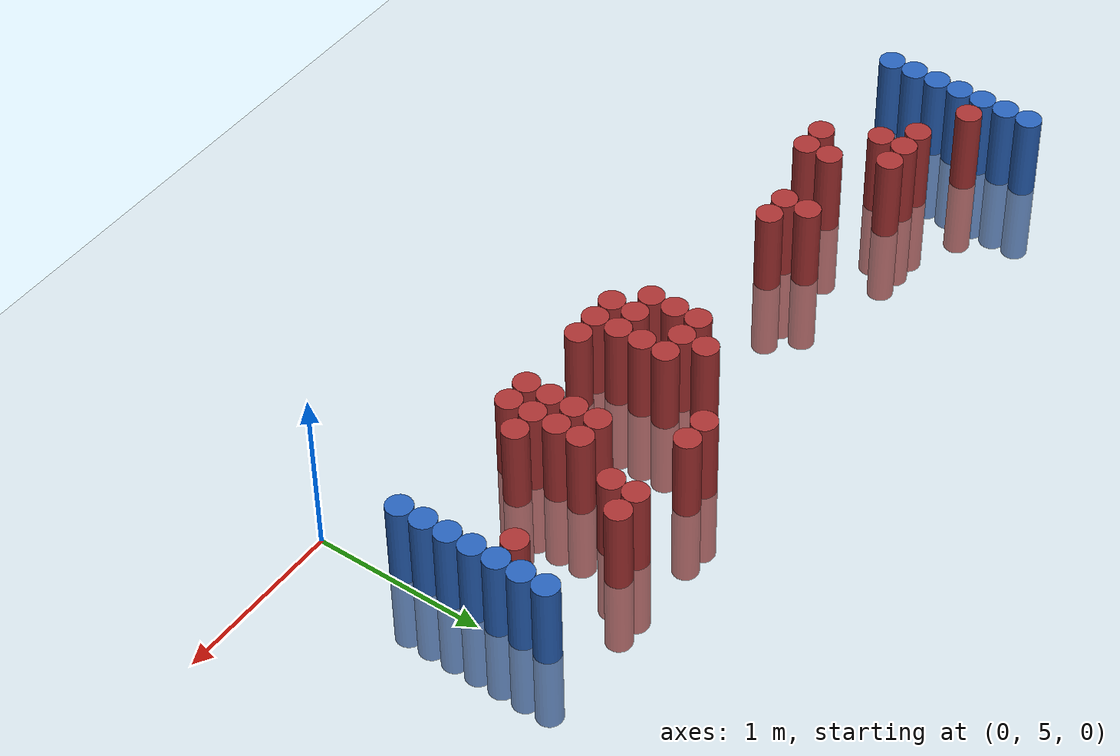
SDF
<sdf version="1.6">
 <world name="default">
  <model name="ground_plane">
   <static>1</static>
   <link name="link">
    <collision name="collision">
     <geometry><plane><normal>0 0 1</normal><size>100 100</size></plane></geometry>
     <surface><friction><ode><mu>100</mu><mu2>50</mu2></ode></friction></surface>
    </collision>
    <visual name="visual">
     <cast_shadows>0</cast_shadows>
     <geometry><plane><normal>0 0 1</normal><size>100 100</size></plane></geometry>
     <material>
      <script><uri>file://media/materials/scripts/gazebo.material</uri><name>Gazebo/Grey</name></script>
     </material>
    </visual>
   </link>
  </model>
  <model name="unit_cylinder_99">
   <static>1</static>
   <pose>-4.425000 5.625000 0.000000 0.000000 0.000000 0.000000</pose>
   <link name="link">
    <inertial>
     <mass>1</mass>
     <inertia><ixx>0.145833</ixx><ixy>0</ixy><ixz>0</ixz><iyy>0.145833</iyy><iyz>0</iyz><izz>0.125</izz></inertia>
    </inertial>
    <collision name="collision">
     <geometry><cylinder><radius>0.075000</radius><length>1</length></cylinder></geometry>
    </collision>
    <visual name="visual">
     <geometry><cylinder><radius>0.075000</radius><length>1</length></cylinder></geometry>
     <material>
      <ambient>0.152000 0.379000 0.720000 1</ambient>
      <diffuse>0.152000 0.379000 0.720000 1</diffuse>
     </material>
     <material>
      <script><name>Gazebo/Grey</name><uri>file://media/materials/scripts/gazebo.material</uri></script>
     </material>
    </visual>
   </link>
  </model>
  <model name="unit_cylinder_100">
   <static>1</static>
   <pose>-4.425000 5.775000 0.000000 0.000000 0.000000 0.000000</pose>
   <link name="link">
    <inertial>
     <mass>1</mass>
     <inertia><ixx>0.145833</ixx><ixy>0</ixy><ixz>0</ixz><iyy>0.145833</iyy><iyz>0</iyz><izz>0.125</izz></inertia>
    </inertial>
    <collision name="collision">
     <geometry><cylinder><radius>0.075000</radius><length>1</length></cylinder></geometry>
    </collision>
    <visual name="visual">
     <geometry><cylinder><radius>0.075000</radius><length>1</length></cylinder></geometry>
     <material>
      <ambient>0.152000 0.379000 0.720000 1</ambient>
      <diffuse>0.152000 0.379000 0.720000 1</diffuse>
     </material>
     <material>
      <script><name>Gazebo/Grey</name><uri>file://media/materials/scripts/gazebo.material</uri></script>
     </material>
    </visual>
   </link>
  </model>
  <model name="unit_cylinder_101">
   <static>1</static>
   <pose>-4.425000 5.925000 0.000000 0.000000 0.000000 0.000000</pose>
   <link name="link">
    <inertial>
     <mass>1</mass>
     <inertia><ixx>0.145833</ixx><ixy>0</ixy><ixz>0</ixz><iyy>0.145833</iyy><iyz>0</iyz><izz>0.125</izz></inertia>
    </inertial>
    <collision name="collision">
     <geometry><cylinder><radius>0.075000</radius><length>1</length></cylinder></geometry>
    </collision>
    <visual name="visual">
     <geometry><cylinder><radius>0.075000</radius><length>1</length></cylinder></geometry>
     <material>
      <ambient>0.152000 0.379000 0.720000 1</ambient>
      <diffuse>0.152000 0.379000 0.720000 1</diffuse>
     </material>
     <material>
      <script><name>Gazebo/Grey</name><uri>file://media/materials/scripts/gazebo.material</uri></script>
     </material>
    </visual>
   </link>
  </model>
  <model name="unit_cylinder_102">
   <static>1</static>
   <pose>-4.425000 6.075000 0.000000 0.000000 0.000000 0.000000</pose>
   <link name="link">
    <inertial>
     <mass>1</mass>
     <inertia><ixx>0.145833</ixx><ixy>0</ixy><ixz>0</ixz><iyy>0.145833</iyy><iyz>0</iyz><izz>0.125</izz></inertia>
    </inertial>
    <collision name="collision">
     <geometry><cylinder><radius>0.075000</radius><length>1</length></cylinder></geometry>
    </collision>
    <visual name="visual">
     <geometry><cylinder><radius>0.075000</radius><length>1</length></cylinder></geometry>
     <material>
      <ambient>0.152000 0.379000 0.720000 1</ambient>
      <diffuse>0.152000 0.379000 0.720000 1</diffuse>
     </material>
     <material>
      <script><name>Gazebo/Grey</name><uri>file://media/materials/scripts/gazebo.material</uri></script>
     </material>
    </visual>
   </link>
  </model>
  <model name="unit_cylinder_103">
   <static>1</static>
   <pose>-4.425000 6.225000 0.000000 0.000000 0.000000 0.000000</pose>
   <link name="link">
    <inertial>
     <mass>1</mass>
     <inertia><ixx>0.145833</ixx><ixy>0</ixy><ixz>0</ixz><iyy>0.145833</iyy><iyz>0</iyz><izz>0.125</izz></inertia>
    </inertial>
    <collision name="collision">
     <geometry><cylinder><radius>0.075000</radius><length>1</length></cylinder></geometry>
    </collision>
    <visual name="visual">
     <geometry><cylinder><radius>0.075000</radius><length>1</length></cylinder></geometry>
     <material>
      <ambient>0.152000 0.379000 0.720000 1</ambient>
      <diffuse>0.152000 0.379000 0.720000 1</diffuse>
     </material>
     <material>
      <script><name>Gazebo/Grey</name><uri>file://media/materials/scripts/gazebo.material</uri></script>
     </material>
    </visual>
   </link>
  </model>
  <model name="unit_cylinder_104">
   <static>1</static>
   <pose>-4.425000 6.375000 0.000000 0.000000 0.000000 0.000000</pose>
   <link name="link">
    <inertial>
     <mass>1</mass>
     <inertia><ixx>0.145833</ixx><ixy>0</ixy><ixz>0</ixz><iyy>0.145833</iyy><iyz>0</iyz><izz>0.125</izz></inertia>
    </inertial>
    <collision name="collision">
     <geometry><cylinder><radius>0.075000</radius><length>1</length></cylinder></geometry>
    </collision>
    <visual name="visual">
     <geometry><cylinder><radius>0.075000</radius><length>1</length></cylinder></geometry>
     <material>
      <ambient>0.152000 0.379000 0.720000 1</ambient>
      <diffuse>0.152000 0.379000 0.720000 1</diffuse>
     </material>
     <material>
      <script><name>Gazebo/Grey</name><uri>file://media/materials/scripts/gazebo.material</uri></script>
     </material>
    </visual>
   </link>
  </model>
  <model name="unit_cylinder_105">
   <static>1</static>
   <pose>-4.425000 6.525000 0.000000 0.000000 0.000000 0.000000</pose>
   <link name="link">
    <inertial>
     <mass>1</mass>
     <inertia><ixx>0.145833</ixx><ixy>0</ixy><ixz>0</ixz><iyy>0.145833</iyy><iyz>0</iyz><izz>0.125</izz></inertia>
    </inertial>
    <collision name="collision">
     <geometry><cylinder><radius>0.075000</radius><length>1</length></cylinder></geometry>
    </collision>
    <visual name="visual">
     <geometry><cylinder><radius>0.075000</radius><length>1</length></cylinder></geometry>
     <material>
      <ambient>0.152000 0.379000 0.720000 1</ambient>
      <diffuse>0.152000 0.379000 0.720000 1</diffuse>
     </material>
     <material>
      <script><name>Gazebo/Grey</name><uri>file://media/materials/scripts/gazebo.material</uri></script>
     </material>
    </visual>
   </link>
  </model>
  <model name="unit_cylinder_126">
   <static>1</static>
   <pose>-4.275000 6.225000 0.000000 0.000000 0.000000 0.000000</pose>
   <link name="link">
    <inertial>
     <mass>1</mass>
     <inertia><ixx>0.145833</ixx><ixy>0</ixy><ixz>0</ixz><iyy>0.145833</iyy><iyz>0</iyz><izz>0.125</izz></inertia>
    </inertial>
    <collision name="collision">
     <geometry><cylinder><radius>0.075000</radius><length>1</length></cylinder></geometry>
    </collision>
    <visual name="visual">
     <geometry><cylinder><radius>0.075000</radius><length>1</length></cylinder></geometry>
     <material>
      <ambient>0.648000 0.192000 0.192000 1</ambient>
      <diffuse>0.648000 0.192000 0.192000 1</diffuse>
     </material>
     <material>
      <script><name>Gazebo/Grey</name><uri>file://media/materials/scripts/gazebo.material</uri></script>
     </material>
    </visual>
   </link>
  </model>
  <model name="unit_cylinder_145">
   <static>1</static>
   <pose>-3.975000 6.075000 0.000000 0.000000 0.000000 0.000000</pose>
   <link name="link">
    <inertial>
     <mass>1</mass>
     <inertia><ixx>0.145833</ixx><ixy>0</ixy><ixz>0</ixz><iyy>0.145833</iyy><iyz>0</iyz><izz>0.125</izz></inertia>
    </inertial>
    <collision name="collision">
     <geometry><cylinder><radius>0.075000</radius><length>1</length></cylinder></geometry>
    </collision>
    <visual name="visual">
     <geometry><cylinder><radius>0.075000</radius><length>1</length></cylinder></geometry>
     <material>
      <ambient>0.648000 0.192000 0.192000 1</ambient>
      <diffuse>0.648000 0.192000 0.192000 1</diffuse>
     </material>
     <material>
      <script><name>Gazebo/Grey</name><uri>file://media/materials/scripts/gazebo.material</uri></script>
     </material>
    </visual>
   </link>
  </model>
  <model name="unit_cylinder_147">
   <static>1</static>
   <pose>-3.825000 5.925000 0.000000 0.000000 0.000000 0.000000</pose>
   <link name="link">
    <inertial>
     <mass>1</mass>
     <inertia><ixx>0.145833</ixx><ixy>0</ixy><ixz>0</ixz><iyy>0.145833</iyy><iyz>0</iyz><izz>0.125</izz></inertia>
    </inertial>
    <collision name="collision">
     <geometry><cylinder><radius>0.075000</radius><length>1</length></cylinder></geometry>
    </collision>
    <visual name="visual">
     <geometry><cylinder><radius>0.075000</radius><length>1</length></cylinder></geometry>
     <material>
      <ambient>0.648000 0.192000 0.192000 1</ambient>
      <diffuse>0.648000 0.192000 0.192000 1</diffuse>
     </material>
     <material>
      <script><name>Gazebo/Grey</name><uri>file://media/materials/scripts/gazebo.material</uri></script>
     </material>
    </visual>
   </link>
  </model>
  <model name="unit_cylinder_148">
   <static>1</static>
   <pose>-3.825000 6.075000 0.000000 0.000000 0.000000 0.000000</pose>
   <link name="link">
    <inertial>
     <mass>1</mass>
     <inertia><ixx>0.145833</ixx><ixy>0</ixy><ixz>0</ixz><iyy>0.145833</iyy><iyz>0</iyz><izz>0.125</izz></inertia>
    </inertial>
    <collision name="collision">
     <geometry><cylinder><radius>0.075000</radius><length>1</length></cylinder></geometry>
    </collision>
    <visual name="visual">
     <geometry><cylinder><radius>0.075000</radius><length>1</length></cylinder></geometry>
     <material>
      <ambient>0.648000 0.192000 0.192000 1</ambient>
      <diffuse>0.648000 0.192000 0.192000 1</diffuse>
     </material>
     <material>
      <script><name>Gazebo/Grey</name><uri>file://media/materials/scripts/gazebo.material</uri></script>
     </material>
    </visual>
   </link>
  </model>
  <model name="unit_cylinder_149">
   <static>1</static>
   <pose>-3.675000 5.625000 0.000000 0.000000 0.000000 0.000000</pose>
   <link name="link">
    <inertial>
     <mass>1</mass>
     <inertia><ixx>0.145833</ixx><ixy>0</ixy><ixz>0</ixz><iyy>0.145833</iyy><iyz>0</iyz><izz>0.125</izz></inertia>
    </inertial>
    <collision name="collision">
     <geometry><cylinder><radius>0.075000</radius><length>1</length></cylinder></geometry>
    </collision>
    <visual name="visual">
     <geometry><cylinder><radius>0.075000</radius><length>1</length></cylinder></geometry>
     <material>
      <ambient>0.648000 0.192000 0.192000 1</ambient>
      <diffuse>0.648000 0.192000 0.192000 1</diffuse>
     </material>
     <material>
      <script><name>Gazebo/Grey</name><uri>file://media/materials/scripts/gazebo.material</uri></script>
     </material>
    </visual>
   </link>
  </model>
  <model name="unit_cylinder_150">
   <static>1</static>
   <pose>-3.675000 6.075000 0.000000 0.000000 0.000000 0.000000</pose>
   <link name="link">
    <inertial>
     <mass>1</mass>
     <inertia><ixx>0.145833</ixx><ixy>0</ixy><ixz>0</ixz><iyy>0.145833</iyy><iyz>0</iyz><izz>0.125</izz></inertia>
    </inertial>
    <collision name="collision">
     <geometry><cylinder><radius>0.075000</radius><length>1</length></cylinder></geometry>
    </collision>
    <visual name="visual">
     <geometry><cylinder><radius>0.075000</radius><length>1</length></cylinder></geometry>
     <material>
      <ambient>0.648000 0.192000 0.192000 1</ambient>
      <diffuse>0.648000 0.192000 0.192000 1</diffuse>
     </material>
     <material>
      <script><name>Gazebo/Grey</name><uri>file://media/materials/scripts/gazebo.material</uri></script>
     </material>
    </visual>
   </link>
  </model>
  <model name="unit_cylinder_151">
   <static>1</static>
   <pose>-3.525000 5.625000 0.000000 0.000000 0.000000 0.000000</pose>
   <link name="link">
    <inertial>
     <mass>1</mass>
     <inertia><ixx>0.145833</ixx><ixy>0</ixy><ixz>0</ixz><iyy>0.145833</iyy><iyz>0</iyz><izz>0.125</izz></inertia>
    </inertial>
    <collision name="collision">
     <geometry><cylinder><radius>0.075000</radius><length>1</length></cylinder></geometry>
    </collision>
    <visual name="visual">
     <geometry><cylinder><radius>0.075000</radius><length>1</length></cylinder></geometry>
     <material>
      <ambient>0.648000 0.192000 0.192000 1</ambient>
      <diffuse>0.648000 0.192000 0.192000 1</diffuse>
     </material>
     <material>
      <script><name>Gazebo/Grey</name><uri>file://media/materials/scripts/gazebo.material</uri></script>
     </material>
    </visual>
   </link>
  </model>
  <model name="unit_cylinder_152">
   <static>1</static>
   <pose>-3.525000 5.775000 0.000000 0.000000 0.000000 0.000000</pose>
   <link name="link">
    <inertial>
     <mass>1</mass>
     <inertia><ixx>0.145833</ixx><ixy>0</ixy><ixz>0</ixz><iyy>0.145833</iyy><iyz>0</iyz><izz>0.125</izz></inertia>
    </inertial>
    <collision name="collision">
     <geometry><cylinder><radius>0.075000</radius><length>1</length></cylinder></geometry>
    </collision>
    <visual name="visual">
     <geometry><cylinder><radius>0.075000</radius><length>1</length></cylinder></geometry>
     <material>
      <ambient>0.648000 0.192000 0.192000 1</ambient>
      <diffuse>0.648000 0.192000 0.192000 1</diffuse>
     </material>
     <material>
      <script><name>Gazebo/Grey</name><uri>file://media/materials/scripts/gazebo.material</uri></script>
     </material>
    </visual>
   </link>
  </model>
  <model name="unit_cylinder_153">
   <static>1</static>
   <pose>-3.075000 5.775000 0.000000 0.000000 0.000000 0.000000</pose>
   <link name="link">
    <inertial>
     <mass>1</mass>
     <inertia><ixx>0.145833</ixx><ixy>0</ixy><ixz>0</ixz><iyy>0.145833</iyy><iyz>0</iyz><izz>0.125</izz></inertia>
    </inertial>
    <collision name="collision">
     <geometry><cylinder><radius>0.075000</radius><length>1</length></cylinder></geometry>
    </collision>
    <visual name="visual">
     <geometry><cylinder><radius>0.075000</radius><length>1</length></cylinder></geometry>
     <material>
      <ambient>0.648000 0.192000 0.192000 1</ambient>
      <diffuse>0.648000 0.192000 0.192000 1</diffuse>
     </material>
     <material>
      <script><name>Gazebo/Grey</name><uri>file://media/materials/scripts/gazebo.material</uri></script>
     </material>
    </visual>
   </link>
  </model>
  <model name="unit_cylinder_154">
   <static>1</static>
   <pose>-3.075000 5.925000 0.000000 0.000000 0.000000 0.000000</pose>
   <link name="link">
    <inertial>
     <mass>1</mass>
     <inertia><ixx>0.145833</ixx><ixy>0</ixy><ixz>0</ixz><iyy>0.145833</iyy><iyz>0</iyz><izz>0.125</izz></inertia>
    </inertial>
    <collision name="collision">
     <geometry><cylinder><radius>0.075000</radius><length>1</length></cylinder></geometry>
    </collision>
    <visual name="visual">
     <geometry><cylinder><radius>0.075000</radius><length>1</length></cylinder></geometry>
     <material>
      <ambient>0.648000 0.192000 0.192000 1</ambient>
      <diffuse>0.648000 0.192000 0.192000 1</diffuse>
     </material>
     <material>
      <script><name>Gazebo/Grey</name><uri>file://media/materials/scripts/gazebo.material</uri></script>
     </material>
    </visual>
   </link>
  </model>
  <model name="unit_cylinder_160">
   <static>1</static>
   <pose>-2.925000 5.775000 0.000000 0.000000 0.000000 0.000000</pose>
   <link name="link">
    <inertial>
     <mass>1</mass>
     <inertia><ixx>0.145833</ixx><ixy>0</ixy><ixz>0</ixz><iyy>0.145833</iyy><iyz>0</iyz><izz>0.125</izz></inertia>
    </inertial>
    <collision name="collision">
     <geometry><cylinder><radius>0.075000</radius><length>1</length></cylinder></geometry>
    </collision>
    <visual name="visual">
     <geometry><cylinder><radius>0.075000</radius><length>1</length></cylinder></geometry>
     <material>
      <ambient>0.648000 0.192000 0.192000 1</ambient>
      <diffuse>0.648000 0.192000 0.192000 1</diffuse>
     </material>
     <material>
      <script><name>Gazebo/Grey</name><uri>file://media/materials/scripts/gazebo.material</uri></script>
     </material>
    </visual>
   </link>
  </model>
  <model name="unit_cylinder_187">
   <static>1</static>
   <pose>-2.025000 5.625000 0.000000 0.000000 0.000000 0.000000</pose>
   <link name="link">
    <inertial>
     <mass>1</mass>
     <inertia><ixx>0.145833</ixx><ixy>0</ixy><ixz>0</ixz><iyy>0.145833</iyy><iyz>0</iyz><izz>0.125</izz></inertia>
    </inertial>
    <collision name="collision">
     <geometry><cylinder><radius>0.075000</radius><length>1</length></cylinder></geometry>
    </collision>
    <visual name="visual">
     <geometry><cylinder><radius>0.075000</radius><length>1</length></cylinder></geometry>
     <material>
      <ambient>0.648000 0.192000 0.192000 1</ambient>
      <diffuse>0.648000 0.192000 0.192000 1</diffuse>
     </material>
     <material>
      <script><name>Gazebo/Grey</name><uri>file://media/materials/scripts/gazebo.material</uri></script>
     </material>
    </visual>
   </link>
  </model>
  <model name="unit_cylinder_188">
   <static>1</static>
   <pose>-2.025000 5.775000 0.000000 0.000000 0.000000 0.000000</pose>
   <link name="link">
    <inertial>
     <mass>1</mass>
     <inertia><ixx>0.145833</ixx><ixy>0</ixy><ixz>0</ixz><iyy>0.145833</iyy><iyz>0</iyz><izz>0.125</izz></inertia>
    </inertial>
    <collision name="collision">
     <geometry><cylinder><radius>0.075000</radius><length>1</length></cylinder></geometry>
    </collision>
    <visual name="visual">
     <geometry><cylinder><radius>0.075000</radius><length>1</length></cylinder></geometry>
     <material>
      <ambient>0.648000 0.192000 0.192000 1</ambient>
      <diffuse>0.648000 0.192000 0.192000 1</diffuse>
     </material>
     <material>
      <script><name>Gazebo/Grey</name><uri>file://media/materials/scripts/gazebo.material</uri></script>
     </material>
    </visual>
   </link>
  </model>
  <model name="unit_cylinder_189">
   <static>1</static>
   <pose>-2.025000 5.925000 0.000000 0.000000 0.000000 0.000000</pose>
   <link name="link">
    <inertial>
     <mass>1</mass>
     <inertia><ixx>0.145833</ixx><ixy>0</ixy><ixz>0</ixz><iyy>0.145833</iyy><iyz>0</iyz><izz>0.125</izz></inertia>
    </inertial>
    <collision name="collision">
     <geometry><cylinder><radius>0.075000</radius><length>1</length></cylinder></geometry>
    </collision>
    <visual name="visual">
     <geometry><cylinder><radius>0.075000</radius><length>1</length></cylinder></geometry>
     <material>
      <ambient>0.648000 0.192000 0.192000 1</ambient>
      <diffuse>0.648000 0.192000 0.192000 1</diffuse>
     </material>
     <material>
      <script><name>Gazebo/Grey</name><uri>file://media/materials/scripts/gazebo.material</uri></script>
     </material>
    </visual>
   </link>
  </model>
  <model name="unit_cylinder_193">
   <static>1</static>
   <pose>-1.875000 5.475000 0.000000 0.000000 0.000000 0.000000</pose>
   <link name="link">
    <inertial>
     <mass>1</mass>
     <inertia><ixx>0.145833</ixx><ixy>0</ixy><ixz>0</ixz><iyy>0.145833</iyy><iyz>0</iyz><izz>0.125</izz></inertia>
    </inertial>
    <collision name="collision">
     <geometry><cylinder><radius>0.075000</radius><length>1</length></cylinder></geometry>
    </collision>
    <visual name="visual">
     <geometry><cylinder><radius>0.075000</radius><length>1</length></cylinder></geometry>
     <material>
      <ambient>0.648000 0.192000 0.192000 1</ambient>
      <diffuse>0.648000 0.192000 0.192000 1</diffuse>
     </material>
     <material>
      <script><name>Gazebo/Grey</name><uri>file://media/materials/scripts/gazebo.material</uri></script>
     </material>
    </visual>
   </link>
  </model>
  <model name="unit_cylinder_194">
   <static>1</static>
   <pose>-1.875000 5.625000 0.000000 0.000000 0.000000 0.000000</pose>
   <link name="link">
    <inertial>
     <mass>1</mass>
     <inertia><ixx>0.145833</ixx><ixy>0</ixy><ixz>0</ixz><iyy>0.145833</iyy><iyz>0</iyz><izz>0.125</izz></inertia>
    </inertial>
    <collision name="collision">
     <geometry><cylinder><radius>0.075000</radius><length>1</length></cylinder></geometry>
    </collision>
    <visual name="visual">
     <geometry><cylinder><radius>0.075000</radius><length>1</length></cylinder></geometry>
     <material>
      <ambient>0.648000 0.192000 0.192000 1</ambient>
      <diffuse>0.648000 0.192000 0.192000 1</diffuse>
     </material>
     <material>
      <script><name>Gazebo/Grey</name><uri>file://media/materials/scripts/gazebo.material</uri></script>
     </material>
    </visual>
   </link>
  </model>
  <model name="unit_cylinder_195">
   <static>1</static>
   <pose>-1.875000 5.925000 0.000000 0.000000 0.000000 0.000000</pose>
   <link name="link">
    <inertial>
     <mass>1</mass>
     <inertia><ixx>0.145833</ixx><ixy>0</ixy><ixz>0</ixz><iyy>0.145833</iyy><iyz>0</iyz><izz>0.125</izz></inertia>
    </inertial>
    <collision name="collision">
     <geometry><cylinder><radius>0.075000</radius><length>1</length></cylinder></geometry>
    </collision>
    <visual name="visual">
     <geometry><cylinder><radius>0.075000</radius><length>1</length></cylinder></geometry>
     <material>
      <ambient>0.648000 0.192000 0.192000 1</ambient>
      <diffuse>0.648000 0.192000 0.192000 1</diffuse>
     </material>
     <material>
      <script><name>Gazebo/Grey</name><uri>file://media/materials/scripts/gazebo.material</uri></script>
     </material>
    </visual>
   </link>
  </model>
  <model name="unit_cylinder_196">
   <static>1</static>
   <pose>-1.875000 6.075000 0.000000 0.000000 0.000000 0.000000</pose>
   <link name="link">
    <inertial>
     <mass>1</mass>
     <inertia><ixx>0.145833</ixx><ixy>0</ixy><ixz>0</ixz><iyy>0.145833</iyy><iyz>0</iyz><izz>0.125</izz></inertia>
    </inertial>
    <collision name="collision">
     <geometry><cylinder><radius>0.075000</radius><length>1</length></cylinder></geometry>
    </collision>
    <visual name="visual">
     <geometry><cylinder><radius>0.075000</radius><length>1</length></cylinder></geometry>
     <material>
      <ambient>0.648000 0.192000 0.192000 1</ambient>
      <diffuse>0.648000 0.192000 0.192000 1</diffuse>
     </material>
     <material>
      <script><name>Gazebo/Grey</name><uri>file://media/materials/scripts/gazebo.material</uri></script>
     </material>
    </visual>
   </link>
  </model>
  <model name="unit_cylinder_200">
   <static>1</static>
   <pose>-1.725000 5.475000 0.000000 0.000000 0.000000 0.000000</pose>
   <link name="link">
    <inertial>
     <mass>1</mass>
     <inertia><ixx>0.145833</ixx><ixy>0</ixy><ixz>0</ixz><iyy>0.145833</iyy><iyz>0</iyz><izz>0.125</izz></inertia>
    </inertial>
    <collision name="collision">
     <geometry><cylinder><radius>0.075000</radius><length>1</length></cylinder></geometry>
    </collision>
    <visual name="visual">
     <geometry><cylinder><radius>0.075000</radius><length>1</length></cylinder></geometry>
     <material>
      <ambient>0.648000 0.192000 0.192000 1</ambient>
      <diffuse>0.648000 0.192000 0.192000 1</diffuse>
     </material>
     <material>
      <script><name>Gazebo/Grey</name><uri>file://media/materials/scripts/gazebo.material</uri></script>
     </material>
    </visual>
   </link>
  </model>
  <model name="unit_cylinder_201">
   <static>1</static>
   <pose>-1.725000 5.625000 0.000000 0.000000 0.000000 0.000000</pose>
   <link name="link">
    <inertial>
     <mass>1</mass>
     <inertia><ixx>0.145833</ixx><ixy>0</ixy><ixz>0</ixz><iyy>0.145833</iyy><iyz>0</iyz><izz>0.125</izz></inertia>
    </inertial>
    <collision name="collision">
     <geometry><cylinder><radius>0.075000</radius><length>1</length></cylinder></geometry>
    </collision>
    <visual name="visual">
     <geometry><cylinder><radius>0.075000</radius><length>1</length></cylinder></geometry>
     <material>
      <ambient>0.648000 0.192000 0.192000 1</ambient>
      <diffuse>0.648000 0.192000 0.192000 1</diffuse>
     </material>
     <material>
      <script><name>Gazebo/Grey</name><uri>file://media/materials/scripts/gazebo.material</uri></script>
     </material>
    </visual>
   </link>
  </model>
  <model name="unit_cylinder_202">
   <static>1</static>
   <pose>-1.725000 5.775000 0.000000 0.000000 0.000000 0.000000</pose>
   <link name="link">
    <inertial>
     <mass>1</mass>
     <inertia><ixx>0.145833</ixx><ixy>0</ixy><ixz>0</ixz><iyy>0.145833</iyy><iyz>0</iyz><izz>0.125</izz></inertia>
    </inertial>
    <collision name="collision">
     <geometry><cylinder><radius>0.075000</radius><length>1</length></cylinder></geometry>
    </collision>
    <visual name="visual">
     <geometry><cylinder><radius>0.075000</radius><length>1</length></cylinder></geometry>
     <material>
      <ambient>0.648000 0.192000 0.192000 1</ambient>
      <diffuse>0.648000 0.192000 0.192000 1</diffuse>
     </material>
     <material>
      <script><name>Gazebo/Grey</name><uri>file://media/materials/scripts/gazebo.material</uri></script>
     </material>
    </visual>
   </link>
  </model>
  <model name="unit_cylinder_203">
   <static>1</static>
   <pose>-1.725000 5.925000 0.000000 0.000000 0.000000 0.000000</pose>
   <link name="link">
    <inertial>
     <mass>1</mass>
     <inertia><ixx>0.145833</ixx><ixy>0</ixy><ixz>0</ixz><iyy>0.145833</iyy><iyz>0</iyz><izz>0.125</izz></inertia>
    </inertial>
    <collision name="collision">
     <geometry><cylinder><radius>0.075000</radius><length>1</length></cylinder></geometry>
    </collision>
    <visual name="visual">
     <geometry><cylinder><radius>0.075000</radius><length>1</length></cylinder></geometry>
     <material>
      <ambient>0.648000 0.192000 0.192000 1</ambient>
      <diffuse>0.648000 0.192000 0.192000 1</diffuse>
     </material>
     <material>
      <script><name>Gazebo/Grey</name><uri>file://media/materials/scripts/gazebo.material</uri></script>
     </material>
    </visual>
   </link>
  </model>
  <model name="unit_cylinder_208">
   <static>1</static>
   <pose>-1.575000 5.475000 0.000000 0.000000 0.000000 0.000000</pose>
   <link name="link">
    <inertial>
     <mass>1</mass>
     <inertia><ixx>0.145833</ixx><ixy>0</ixy><ixz>0</ixz><iyy>0.145833</iyy><iyz>0</iyz><izz>0.125</izz></inertia>
    </inertial>
    <collision name="collision">
     <geometry><cylinder><radius>0.075000</radius><length>1</length></cylinder></geometry>
    </collision>
    <visual name="visual">
     <geometry><cylinder><radius>0.075000</radius><length>1</length></cylinder></geometry>
     <material>
      <ambient>0.648000 0.192000 0.192000 1</ambient>
      <diffuse>0.648000 0.192000 0.192000 1</diffuse>
     </material>
     <material>
      <script><name>Gazebo/Grey</name><uri>file://media/materials/scripts/gazebo.material</uri></script>
     </material>
    </visual>
   </link>
  </model>
  <model name="unit_cylinder_215">
   <static>1</static>
   <pose>-1.425000 6.375000 0.000000 0.000000 0.000000 0.000000</pose>
   <link name="link">
    <inertial>
     <mass>1</mass>
     <inertia><ixx>0.145833</ixx><ixy>0</ixy><ixz>0</ixz><iyy>0.145833</iyy><iyz>0</iyz><izz>0.125</izz></inertia>
    </inertial>
    <collision name="collision">
     <geometry><cylinder><radius>0.075000</radius><length>1</length></cylinder></geometry>
    </collision>
    <visual name="visual">
     <geometry><cylinder><radius>0.075000</radius><length>1</length></cylinder></geometry>
     <material>
      <ambient>0.648000 0.192000 0.192000 1</ambient>
      <diffuse>0.648000 0.192000 0.192000 1</diffuse>
     </material>
     <material>
      <script><name>Gazebo/Grey</name><uri>file://media/materials/scripts/gazebo.material</uri></script>
     </material>
    </visual>
   </link>
  </model>
  <model name="unit_cylinder_221">
   <static>1</static>
   <pose>-1.275000 6.375000 0.000000 0.000000 0.000000 0.000000</pose>
   <link name="link">
    <inertial>
     <mass>1</mass>
     <inertia><ixx>0.145833</ixx><ixy>0</ixy><ixz>0</ixz><iyy>0.145833</iyy><iyz>0</iyz><izz>0.125</izz></inertia>
    </inertial>
    <collision name="collision">
     <geometry><cylinder><radius>0.075000</radius><length>1</length></cylinder></geometry>
    </collision>
    <visual name="visual">
     <geometry><cylinder><radius>0.075000</radius><length>1</length></cylinder></geometry>
     <material>
      <ambient>0.648000 0.192000 0.192000 1</ambient>
      <diffuse>0.648000 0.192000 0.192000 1</diffuse>
     </material>
     <material>
      <script><name>Gazebo/Grey</name><uri>file://media/materials/scripts/gazebo.material</uri></script>
     </material>
    </visual>
   </link>
  </model>
  <model name="unit_cylinder_226">
   <static>1</static>
   <pose>-1.125000 5.475000 0.000000 0.000000 0.000000 0.000000</pose>
   <link name="link">
    <inertial>
     <mass>1</mass>
     <inertia><ixx>0.145833</ixx><ixy>0</ixy><ixz>0</ixz><iyy>0.145833</iyy><iyz>0</iyz><izz>0.125</izz></inertia>
    </inertial>
    <collision name="collision">
     <geometry><cylinder><radius>0.075000</radius><length>1</length></cylinder></geometry>
    </collision>
    <visual name="visual">
     <geometry><cylinder><radius>0.075000</radius><length>1</length></cylinder></geometry>
     <material>
      <ambient>0.648000 0.192000 0.192000 1</ambient>
      <diffuse>0.648000 0.192000 0.192000 1</diffuse>
     </material>
     <material>
      <script><name>Gazebo/Grey</name><uri>file://media/materials/scripts/gazebo.material</uri></script>
     </material>
    </visual>
   </link>
  </model>
  <model name="unit_cylinder_227">
   <static>1</static>
   <pose>-1.125000 5.625000 0.000000 0.000000 0.000000 0.000000</pose>
   <link name="link">
    <inertial>
     <mass>1</mass>
     <inertia><ixx>0.145833</ixx><ixy>0</ixy><ixz>0</ixz><iyy>0.145833</iyy><iyz>0</iyz><izz>0.125</izz></inertia>
    </inertial>
    <collision name="collision">
     <geometry><cylinder><radius>0.075000</radius><length>1</length></cylinder></geometry>
    </collision>
    <visual name="visual">
     <geometry><cylinder><radius>0.075000</radius><length>1</length></cylinder></geometry>
     <material>
      <ambient>0.648000 0.192000 0.192000 1</ambient>
      <diffuse>0.648000 0.192000 0.192000 1</diffuse>
     </material>
     <material>
      <script><name>Gazebo/Grey</name><uri>file://media/materials/scripts/gazebo.material</uri></script>
     </material>
    </visual>
   </link>
  </model>
  <model name="unit_cylinder_228">
   <static>1</static>
   <pose>-1.125000 5.775000 0.000000 0.000000 0.000000 0.000000</pose>
   <link name="link">
    <inertial>
     <mass>1</mass>
     <inertia><ixx>0.145833</ixx><ixy>0</ixy><ixz>0</ixz><iyy>0.145833</iyy><iyz>0</iyz><izz>0.125</izz></inertia>
    </inertial>
    <collision name="collision">
     <geometry><cylinder><radius>0.075000</radius><length>1</length></cylinder></geometry>
    </collision>
    <visual name="visual">
     <geometry><cylinder><radius>0.075000</radius><length>1</length></cylinder></geometry>
     <material>
      <ambient>0.648000 0.192000 0.192000 1</ambient>
      <diffuse>0.648000 0.192000 0.192000 1</diffuse>
     </material>
     <material>
      <script><name>Gazebo/Grey</name><uri>file://media/materials/scripts/gazebo.material</uri></script>
     </material>
    </visual>
   </link>
  </model>
  <model name="unit_cylinder_229">
   <static>1</static>
   <pose>-1.125000 5.925000 0.000000 0.000000 0.000000 0.000000</pose>
   <link name="link">
    <inertial>
     <mass>1</mass>
     <inertia><ixx>0.145833</ixx><ixy>0</ixy><ixz>0</ixz><iyy>0.145833</iyy><iyz>0</iyz><izz>0.125</izz></inertia>
    </inertial>
    <collision name="collision">
     <geometry><cylinder><radius>0.075000</radius><length>1</length></cylinder></geometry>
    </collision>
    <visual name="visual">
     <geometry><cylinder><radius>0.075000</radius><length>1</length></cylinder></geometry>
     <material>
      <ambient>0.648000 0.192000 0.192000 1</ambient>
      <diffuse>0.648000 0.192000 0.192000 1</diffuse>
     </material>
     <material>
      <script><name>Gazebo/Grey</name><uri>file://media/materials/scripts/gazebo.material</uri></script>
     </material>
    </visual>
   </link>
  </model>
  <model name="unit_cylinder_232">
   <static>1</static>
   <pose>-0.975000 5.475000 0.000000 0.000000 0.000000 0.000000</pose>
   <link name="link">
    <inertial>
     <mass>1</mass>
     <inertia><ixx>0.145833</ixx><ixy>0</ixy><ixz>0</ixz><iyy>0.145833</iyy><iyz>0</iyz><izz>0.125</izz></inertia>
    </inertial>
    <collision name="collision">
     <geometry><cylinder><radius>0.075000</radius><length>1</length></cylinder></geometry>
    </collision>
    <visual name="visual">
     <geometry><cylinder><radius>0.075000</radius><length>1</length></cylinder></geometry>
     <material>
      <ambient>0.648000 0.192000 0.192000 1</ambient>
      <diffuse>0.648000 0.192000 0.192000 1</diffuse>
     </material>
     <material>
      <script><name>Gazebo/Grey</name><uri>file://media/materials/scripts/gazebo.material</uri></script>
     </material>
    </visual>
   </link>
  </model>
  <model name="unit_cylinder_233">
   <static>1</static>
   <pose>-0.975000 5.625000 0.000000 0.000000 0.000000 0.000000</pose>
   <link name="link">
    <inertial>
     <mass>1</mass>
     <inertia><ixx>0.145833</ixx><ixy>0</ixy><ixz>0</ixz><iyy>0.145833</iyy><iyz>0</iyz><izz>0.125</izz></inertia>
    </inertial>
    <collision name="collision">
     <geometry><cylinder><radius>0.075000</radius><length>1</length></cylinder></geometry>
    </collision>
    <visual name="visual">
     <geometry><cylinder><radius>0.075000</radius><length>1</length></cylinder></geometry>
     <material>
      <ambient>0.648000 0.192000 0.192000 1</ambient>
      <diffuse>0.648000 0.192000 0.192000 1</diffuse>
     </material>
     <material>
      <script><name>Gazebo/Grey</name><uri>file://media/materials/scripts/gazebo.material</uri></script>
     </material>
    </visual>
   </link>
  </model>
  <model name="unit_cylinder_234">
   <static>1</static>
   <pose>-0.975000 5.775000 0.000000 0.000000 0.000000 0.000000</pose>
   <link name="link">
    <inertial>
     <mass>1</mass>
     <inertia><ixx>0.145833</ixx><ixy>0</ixy><ixz>0</ixz><iyy>0.145833</iyy><iyz>0</iyz><izz>0.125</izz></inertia>
    </inertial>
    <collision name="collision">
     <geometry><cylinder><radius>0.075000</radius><length>1</length></cylinder></geometry>
    </collision>
    <visual name="visual">
     <geometry><cylinder><radius>0.075000</radius><length>1</length></cylinder></geometry>
     <material>
      <ambient>0.648000 0.192000 0.192000 1</ambient>
      <diffuse>0.648000 0.192000 0.192000 1</diffuse>
     </material>
     <material>
      <script><name>Gazebo/Grey</name><uri>file://media/materials/scripts/gazebo.material</uri></script>
     </material>
    </visual>
   </link>
  </model>
  <model name="unit_cylinder_235">
   <static>1</static>
   <pose>-0.975000 5.925000 0.000000 0.000000 0.000000 0.000000</pose>
   <link name="link">
    <inertial>
     <mass>1</mass>
     <inertia><ixx>0.145833</ixx><ixy>0</ixy><ixz>0</ixz><iyy>0.145833</iyy><iyz>0</iyz><izz>0.125</izz></inertia>
    </inertial>
    <collision name="collision">
     <geometry><cylinder><radius>0.075000</radius><length>1</length></cylinder></geometry>
    </collision>
    <visual name="visual">
     <geometry><cylinder><radius>0.075000</radius><length>1</length></cylinder></geometry>
     <material>
      <ambient>0.648000 0.192000 0.192000 1</ambient>
      <diffuse>0.648000 0.192000 0.192000 1</diffuse>
     </material>
     <material>
      <script><name>Gazebo/Grey</name><uri>file://media/materials/scripts/gazebo.material</uri></script>
     </material>
    </visual>
   </link>
  </model>
  <model name="unit_cylinder_237">
   <static>1</static>
   <pose>-0.825000 5.625000 0.000000 0.000000 0.000000 0.000000</pose>
   <link name="link">
    <inertial>
     <mass>1</mass>
     <inertia><ixx>0.145833</ixx><ixy>0</ixy><ixz>0</ixz><iyy>0.145833</iyy><iyz>0</iyz><izz>0.125</izz></inertia>
    </inertial>
    <collision name="collision">
     <geometry><cylinder><radius>0.075000</radius><length>1</length></cylinder></geometry>
    </collision>
    <visual name="visual">
     <geometry><cylinder><radius>0.075000</radius><length>1</length></cylinder></geometry>
     <material>
      <ambient>0.648000 0.192000 0.192000 1</ambient>
      <diffuse>0.648000 0.192000 0.192000 1</diffuse>
     </material>
     <material>
      <script><name>Gazebo/Grey</name><uri>file://media/materials/scripts/gazebo.material</uri></script>
     </material>
    </visual>
   </link>
  </model>
  <model name="unit_cylinder_238">
   <static>1</static>
   <pose>-0.825000 6.225000 0.000000 0.000000 0.000000 0.000000</pose>
   <link name="link">
    <inertial>
     <mass>1</mass>
     <inertia><ixx>0.145833</ixx><ixy>0</ixy><ixz>0</ixz><iyy>0.145833</iyy><iyz>0</iyz><izz>0.125</izz></inertia>
    </inertial>
    <collision name="collision">
     <geometry><cylinder><radius>0.075000</radius><length>1</length></cylinder></geometry>
    </collision>
    <visual name="visual">
     <geometry><cylinder><radius>0.075000</radius><length>1</length></cylinder></geometry>
     <material>
      <ambient>0.648000 0.192000 0.192000 1</ambient>
      <diffuse>0.648000 0.192000 0.192000 1</diffuse>
     </material>
     <material>
      <script><name>Gazebo/Grey</name><uri>file://media/materials/scripts/gazebo.material</uri></script>
     </material>
    </visual>
   </link>
  </model>
  <model name="unit_cylinder_239">
   <static>1</static>
   <pose>-0.825000 6.375000 0.000000 0.000000 0.000000 0.000000</pose>
   <link name="link">
    <inertial>
     <mass>1</mass>
     <inertia><ixx>0.145833</ixx><ixy>0</ixy><ixz>0</ixz><iyy>0.145833</iyy><iyz>0</iyz><izz>0.125</izz></inertia>
    </inertial>
    <collision name="collision">
     <geometry><cylinder><radius>0.075000</radius><length>1</length></cylinder></geometry>
    </collision>
    <visual name="visual">
     <geometry><cylinder><radius>0.075000</radius><length>1</length></cylinder></geometry>
     <material>
      <ambient>0.648000 0.192000 0.192000 1</ambient>
      <diffuse>0.648000 0.192000 0.192000 1</diffuse>
     </material>
     <material>
      <script><name>Gazebo/Grey</name><uri>file://media/materials/scripts/gazebo.material</uri></script>
     </material>
    </visual>
   </link>
  </model>
  <model name="unit_cylinder_245">
   <static>1</static>
   <pose>-0.675000 6.375000 0.000000 0.000000 0.000000 0.000000</pose>
   <link name="link">
    <inertial>
     <mass>1</mass>
     <inertia><ixx>0.145833</ixx><ixy>0</ixy><ixz>0</ixz><iyy>0.145833</iyy><iyz>0</iyz><izz>0.125</izz></inertia>
    </inertial>
    <collision name="collision">
     <geometry><cylinder><radius>0.075000</radius><length>1</length></cylinder></geometry>
    </collision>
    <visual name="visual">
     <geometry><cylinder><radius>0.075000</radius><length>1</length></cylinder></geometry>
     <material>
      <ambient>0.648000 0.192000 0.192000 1</ambient>
      <diffuse>0.648000 0.192000 0.192000 1</diffuse>
     </material>
     <material>
      <script><name>Gazebo/Grey</name><uri>file://media/materials/scripts/gazebo.material</uri></script>
     </material>
    </visual>
   </link>
  </model>
  <model name="unit_cylinder_271">
   <static>1</static>
   <pose>-0.225000 6.075000 0.000000 0.000000 0.000000 0.000000</pose>
   <link name="link">
    <inertial>
     <mass>1</mass>
     <inertia><ixx>0.145833</ixx><ixy>0</ixy><ixz>0</ixz><iyy>0.145833</iyy><iyz>0</iyz><izz>0.125</izz></inertia>
    </inertial>
    <collision name="collision">
     <geometry><cylinder><radius>0.075000</radius><length>1</length></cylinder></geometry>
    </collision>
    <visual name="visual">
     <geometry><cylinder><radius>0.075000</radius><length>1</length></cylinder></geometry>
     <material>
      <ambient>0.648000 0.192000 0.192000 1</ambient>
      <diffuse>0.648000 0.192000 0.192000 1</diffuse>
     </material>
     <material>
      <script><name>Gazebo/Grey</name><uri>file://media/materials/scripts/gazebo.material</uri></script>
     </material>
    </visual>
   </link>
  </model>
  <model name="unit_cylinder_286">
   <static>1</static>
   <pose>-0.075000 5.475000 0.000000 0.000000 0.000000 0.000000</pose>
   <link name="link">
    <inertial>
     <mass>1</mass>
     <inertia><ixx>0.145833</ixx><ixy>0</ixy><ixz>0</ixz><iyy>0.145833</iyy><iyz>0</iyz><izz>0.125</izz></inertia>
    </inertial>
    <collision name="collision">
     <geometry><cylinder><radius>0.075000</radius><length>1</length></cylinder></geometry>
    </collision>
    <visual name="visual">
     <geometry><cylinder><radius>0.075000</radius><length>1</length></cylinder></geometry>
     <material>
      <ambient>0.152000 0.379000 0.720000 1</ambient>
      <diffuse>0.152000 0.379000 0.720000 1</diffuse>
     </material>
     <material>
      <script><name>Gazebo/Grey</name><uri>file://media/materials/scripts/gazebo.material</uri></script>
     </material>
    </visual>
   </link>
  </model>
  <model name="unit_cylinder_287">
   <static>1</static>
   <pose>-0.075000 5.625000 0.000000 0.000000 0.000000 0.000000</pose>
   <link name="link">
    <inertial>
     <mass>1</mass>
     <inertia><ixx>0.145833</ixx><ixy>0</ixy><ixz>0</ixz><iyy>0.145833</iyy><iyz>0</iyz><izz>0.125</izz></inertia>
    </inertial>
    <collision name="collision">
     <geometry><cylinder><radius>0.075000</radius><length>1</length></cylinder></geometry>
    </collision>
    <visual name="visual">
     <geometry><cylinder><radius>0.075000</radius><length>1</length></cylinder></geometry>
     <material>
      <ambient>0.152000 0.379000 0.720000 1</ambient>
      <diffuse>0.152000 0.379000 0.720000 1</diffuse>
     </material>
     <material>
      <script><name>Gazebo/Grey</name><uri>file://media/materials/scripts/gazebo.material</uri></script>
     </material>
    </visual>
   </link>
  </model>
  <model name="unit_cylinder_288">
   <static>1</static>
   <pose>-0.075000 5.775000 0.000000 0.000000 0.000000 0.000000</pose>
   <link name="link">
    <inertial>
     <mass>1</mass>
     <inertia><ixx>0.145833</ixx><ixy>0</ixy><ixz>0</ixz><iyy>0.145833</iyy><iyz>0</iyz><izz>0.125</izz></inertia>
    </inertial>
    <collision name="collision">
     <geometry><cylinder><radius>0.075000</radius><length>1</length></cylinder></geometry>
    </collision>
    <visual name="visual">
     <geometry><cylinder><radius>0.075000</radius><length>1</length></cylinder></geometry>
     <material>
      <ambient>0.152000 0.379000 0.720000 1</ambient>
      <diffuse>0.152000 0.379000 0.720000 1</diffuse>
     </material>
     <material>
      <script><name>Gazebo/Grey</name><uri>file://media/materials/scripts/gazebo.material</uri></script>
     </material>
    </visual>
   </link>
  </model>
  <model name="unit_cylinder_289">
   <static>1</static>
   <pose>-0.075000 5.925000 0.000000 0.000000 0.000000 0.000000</pose>
   <link name="link">
    <inertial>
     <mass>1</mass>
     <inertia><ixx>0.145833</ixx><ixy>0</ixy><ixz>0</ixz><iyy>0.145833</iyy><iyz>0</iyz><izz>0.125</izz></inertia>
    </inertial>
    <collision name="collision">
     <geometry><cylinder><radius>0.075000</radius><length>1</length></cylinder></geometry>
    </collision>
    <visual name="visual">
     <geometry><cylinder><radius>0.075000</radius><length>1</length></cylinder></geometry>
     <material>
      <ambient>0.152000 0.379000 0.720000 1</ambient>
      <diffuse>0.152000 0.379000 0.720000 1</diffuse>
     </material>
     <material>
      <script><name>Gazebo/Grey</name><uri>file://media/materials/scripts/gazebo.material</uri></script>
     </material>
    </visual>
   </link>
  </model>
  <model name="unit_cylinder_290">
   <static>1</static>
   <pose>-0.075000 6.075000 0.000000 0.000000 0.000000 0.000000</pose>
   <link name="link">
    <inertial>
     <mass>1</mass>
     <inertia><ixx>0.145833</ixx><ixy>0</ixy><ixz>0</ixz><iyy>0.145833</iyy><iyz>0</iyz><izz>0.125</izz></inertia>
    </inertial>
    <collision name="collision">
     <geometry><cylinder><radius>0.075000</radius><length>1</length></cylinder></geometry>
    </collision>
    <visual name="visual">
     <geometry><cylinder><radius>0.075000</radius><length>1</length></cylinder></geometry>
     <material>
      <ambient>0.152000 0.379000 0.720000 1</ambient>
      <diffuse>0.152000 0.379000 0.720000 1</diffuse>
     </material>
     <material>
      <script><name>Gazebo/Grey</name><uri>file://media/materials/scripts/gazebo.material</uri></script>
     </material>
    </visual>
   </link>
  </model>
  <model name="unit_cylinder_291">
   <static>1</static>
   <pose>-0.075000 6.225000 0.000000 0.000000 0.000000 0.000000</pose>
   <link name="link">
    <inertial>
     <mass>1</mass>
     <inertia><ixx>0.145833</ixx><ixy>0</ixy><ixz>0</ixz><iyy>0.145833</iyy><iyz>0</iyz><izz>0.125</izz></inertia>
    </inertial>
    <collision name="collision">
     <geometry><cylinder><radius>0.075000</radius><length>1</length></cylinder></geometry>
    </collision>
    <visual name="visual">
     <geometry><cylinder><radius>0.075000</radius><length>1</length></cylinder></geometry>
     <material>
      <ambient>0.152000 0.379000 0.720000 1</ambient>
      <diffuse>0.152000 0.379000 0.720000 1</diffuse>
     </material>
     <material>
      <script><name>Gazebo/Grey</name><uri>file://media/materials/scripts/gazebo.material</uri></script>
     </material>
    </visual>
   </link>
  </model>
  <model name="unit_cylinder_292">
   <static>1</static>
   <pose>-0.075000 6.375000 0.000000 0.000000 0.000000 0.000000</pose>
   <link name="link">
    <inertial>
     <mass>1</mass>
     <inertia><ixx>0.145833</ixx><ixy>0</ixy><ixz>0</ixz><iyy>0.145833</iyy><iyz>0</iyz><izz>0.125</izz></inertia>
    </inertial>
    <collision name="collision">
     <geometry><cylinder><radius>0.075000</radius><length>1</length></cylinder></geometry>
    </collision>
    <visual name="visual">
     <geometry><cylinder><radius>0.075000</radius><length>1</length></cylinder></geometry>
     <material>
      <ambient>0.152000 0.379000 0.720000 1</ambient>
      <diffuse>0.152000 0.379000 0.720000 1</diffuse>
     </material>
     <material>
      <script><name>Gazebo/Grey</name><uri>file://media/materials/scripts/gazebo.material</uri></script>
     </material>
    </visual>
   </link>
  </model>
 </world>
</sdf>
